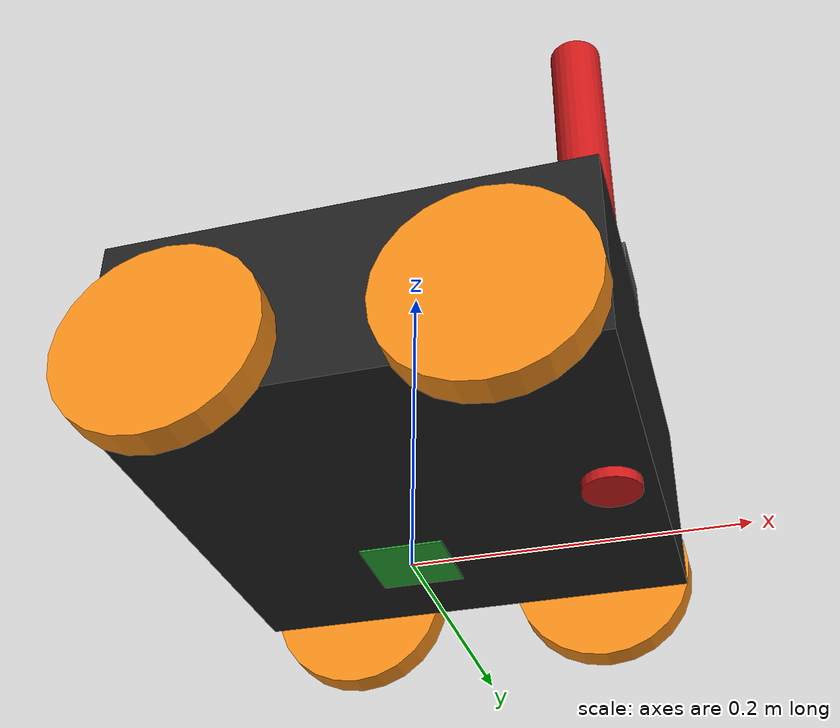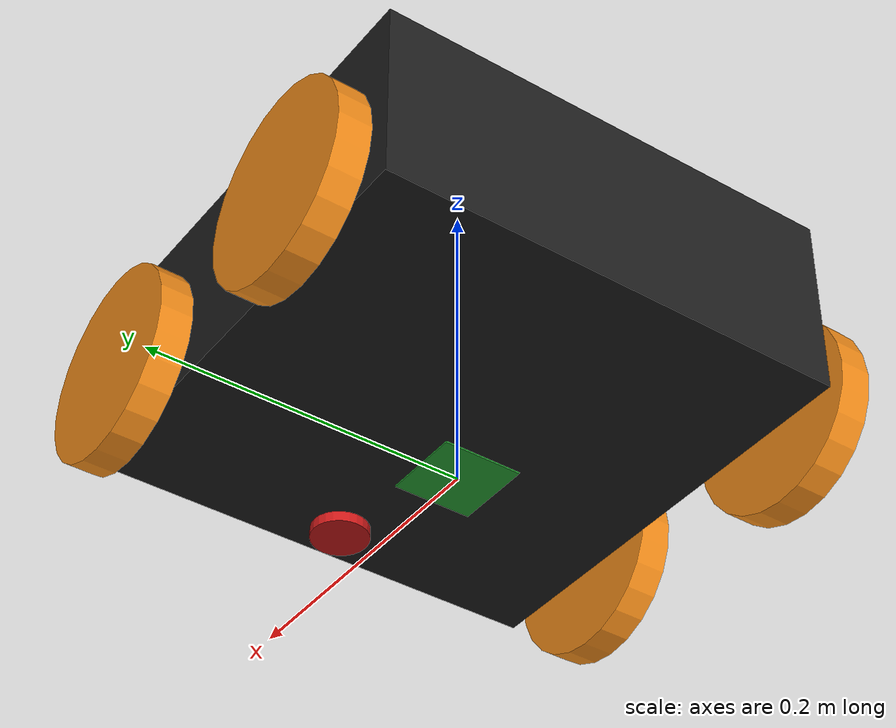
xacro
<?xml version="1.0"?>

<robot name="box_robot" xmlns:xacro="http://ros.org/wiki/xacro">

   <!-- Define a number of dimensions using properties -->
   <property name="laser_offset_x" value="0.123" />
   <property name="laser_offset_y" value="0.0" />
   <property name="laser_offset_z" value="0.08" />

   <!-- Include all component files -->
   <xacro:include filename="$(find my_serial_node)/urdf/box/materials.urdf.xacro" />
   <xacro:include filename="$(find my_serial_node)/urdf/box/base.urdf.xacro" />
   <xacro:include filename="$(find my_serial_node)/urdf/box/laser.urdf.xacro" />

   <!-- Add the base and wheels -->
   <base name="base" color="Black"/>

   <!-- Attach the laser -->
   <laser parent="base" color="DarkGrey">
      <origin xyz="${laser_offset_x} ${laser_offset_y} ${laser_offset_z}" rpy="0 0 0 " />
   </laser>

</robot>

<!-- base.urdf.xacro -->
<robot name="base" xmlns:xacro="http://ros.org/wiki/xacro">

  <!-- Define a number of dimensions using properties -->
  <property name="base_size_x" value="0.30" />
  <property name="base_size_y" value="0.30" />
  <property name="base_size_z" value="0.12" />
  <property name="wheel_length" value="0.02032" />
  <property name="wheel_radius" value="0.06191" />
  <property name="wheel_offset_x" value="0.09" />
  <property name="wheel_offset_y" value="0.17" />
  <property name="wheel_offset_z" value="-0.038" />

  <property name="PI" value="3.1415" />

  <!-- define a wheel -->
  <macro name="wheel" params="suffix parent reflect color reflectx">
    <joint name="${parent}_${suffix}_wheel_joint" type="continuous">
      <axis xyz="0 0 1" />
      <limit effort="100" velocity="100"/>
      <safety_controller k_velocity="10" />
      <origin xyz="${reflectx*wheel_offset_x} ${reflect*wheel_offset_y} ${wheel_offset_z}" rpy="${reflect*PI/2} 0 0" />
      <parent link="${parent}_link"/>
      <child link="${parent}_${suffix}_wheel_link"/>
    </joint>
    <link name="${parent}_${suffix}_wheel_link">
      <visual>
        <origin xyz="0 0 0" rpy="0 0 0" />
        <geometry>
          <cylinder radius="${wheel_radius}" length="${wheel_length}"/>
        </geometry>
        <material name="${color}" />
      </visual>
    </link>
  </macro>

  <!-- The base xacro macro -->
  <macro name="base" params="name color">
    <link name="${name}_link">
      <visual>
        <origin xyz="0 0 0" rpy="0 0 0" />
        <geometry>
          <box size="${base_size_x} ${base_size_y} ${base_size_z}" />
        </geometry>
        <material name="${color}" />
      </visual>
      <collision>
        <origin xyz="0 0 0" rpy="0 0 0" />
        <geometry>
          <box size="${base_size_x} ${wheel_offset_y*2 + wheel_length} ${base_size_z}" />
        </geometry>
      </collision>
    </link>
  </macro>

  <link name="base_footprint">
      <visual>
        <origin xyz="0 0 0" rpy="0 0 0" />
        <geometry>
          <box size="0.05 0.05 0.001" />
        </geometry>
        <material name="TransparentGreen" />
      </visual>
  </link>

  <joint name="base_joint" type="fixed">
    <origin xyz="0 0 ${base_size_z/2 - wheel_offset_z}" rpy="0 0 0" />
    <parent link="base_footprint"/>
    <child link="base_link" />
  </joint>

   <!-- Add the drive wheels -->
   <wheel parent="base" suffix="l" reflect="1" reflectx="1" color="Orange"/>
   <wheel parent="base" suffix="d" reflect="1"  reflectx="-1" color="Orange"/>
   <wheel parent="base" suffix="r" reflect="-1"  reflectx="1" color="Orange"/>
      <wheel parent="base" suffix="b" reflect="-1"  reflectx="-1" color="Orange"/>

</robot>

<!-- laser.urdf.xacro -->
<robot name="laser" xmlns:xacro="http://ros.org/wiki/xacro">

  <!-- A box-and-cylinder model of the Hokuyo URG-04LX-UG01 laser scanner -->

  <!-- Define the laser macro -->
  <macro name="laser" params="parent color *origin">
    <joint name="${parent}_laser_bottom_joint" type="fixed">
      <xacro:insert_block name="origin" />
      <parent link="${parent}_link"/>
      <child link="base_laser_bottom"/>
    </joint>

   <link name="base_laser_bottom">
	 <visual>
        <origin xyz="0 0 0" rpy="0 0 0" />
        <geometry>
          <box size="0.05 0.05 0.041" />
        </geometry>
       <material name="${color}" />
     </visual>
     <collision>
        <origin xyz="0 0 0" rpy="0 0 0" />
      <geometry>
        <box size="0.05 0.05 0.041" />
      </geometry>
       </collision>
	 <inertial>
       <mass value="0.1" />
         <inertia ixx="0.001" ixy="0.0" ixz="0.0"
                   iyy="0.001" iyz="0.0"
                   izz="0.001" />
      </inertial>
   </link>

   <link name="base_laser_middle">
	 <visual>
        <origin xyz="0 0 0" rpy="0 0 0" />
		<geometry>
          <cylinder length="0.0115" radius=".02"/>
        </geometry>
        <material name="dark_grey">
           <color rgba="0.2 0.2 0.2 1.0"/>
        </material>
     </visual>
     <collision>
        <origin xyz="0 0 0" rpy="0 0 0" />
		 <geometry>
          <cylinder length="0.0115" radius=".02"/>
         </geometry>
       </collision>
	 <inertial>
       <mass value="0.1" />
         <inertia ixx="0.001" ixy="0.0" ixz="0.0"
                   iyy="0.001" iyz="0.0"
                   izz="0.001" />
      </inertial>
   </link>

   <joint name="base_laser_middle_joint" type="fixed">
     <parent link="base_laser_bottom"/>
     <child link="base_laser_middle" />
     <origin xyz="0 0 0.02625" rpy="0 0 0" />
   </joint>

   <link name="base_laser">
	 <visual>
        <origin xyz="0 0 0" rpy="0 0 0" />
		<geometry>
          <cylinder length="0.375" radius=".0185"/>
        </geometry>
        <material name="red">
           <color rgba="0.8 0.1 0.1 1.0"/>
        </material>
     </visual>
     <collision>
        <origin xyz="0 0 0" rpy="0 0 0" />
		 <geometry>
          <cylinder length="0.0175" radius=".0185"/>
         </geometry>
       </collision>
	 <inertial>
       <mass value="0.1" />
         <inertia ixx="0.001" ixy="0.0" ixz="0.0"
                   iyy="0.001" iyz="0.0"
                   izz="0.001" />
      </inertial>
   </link>

   <joint name="base_laser_joint" type="fixed">
     <parent link="base_laser_middle"/>
     <child link="base_laser" />
     <origin xyz="0 0 0.0145" rpy="0 0 0" />
   </joint>

  </macro>

 </robot>
